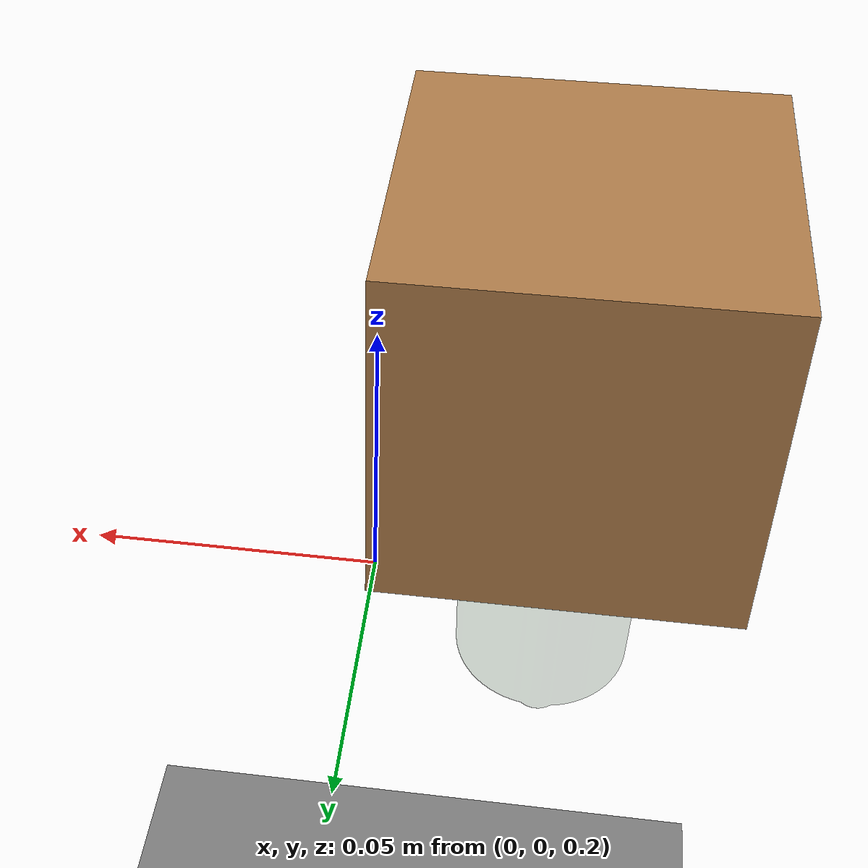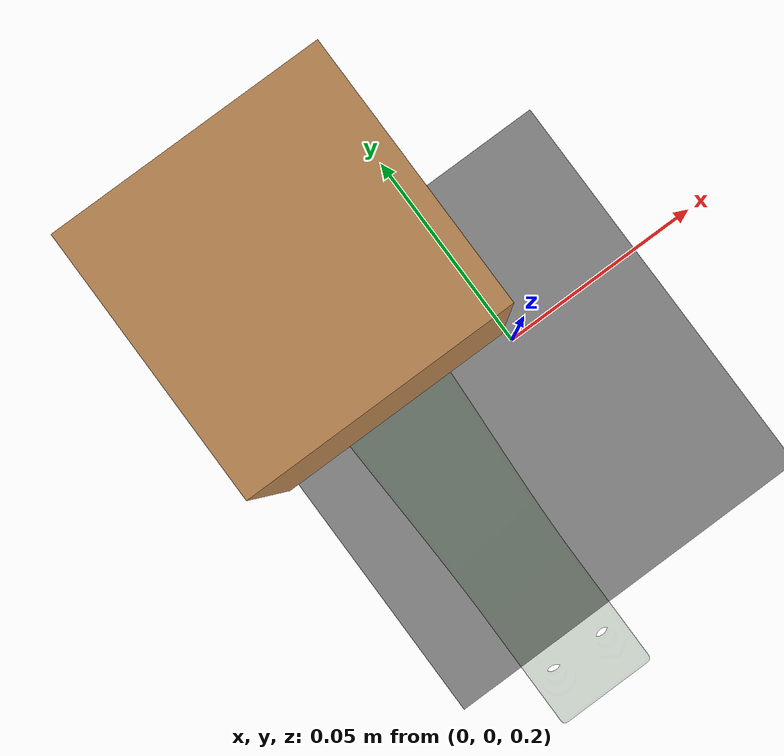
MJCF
<mujoco model="touchtest">
  <compiler autolimits="true" eulerseq="xyz" angle="radian" meshdir="assets"/>
  <include file="tacto_common.xml"/>

  <contact>
    <!-- enable all contacts between bodies childA and childB -->
    <!-- This is necessary since both can and left_finger belong to the same body.-->
    <!-- Though, in "normal" use cases, that won't be necessary. -->
    <pair geom1="finger_1_left_0" geom2="can_geom"/>
  </contact>

  <option tolerance="1e-8" gravity="0 0 -9.81" timestep="0.002"/>

  <visual>
    <headlight ambient=".7 .7 .7" diffuse=".2 .2 .2" specular="0.1 0.1 0.1" />
    <map znear="0.001" />
    <scale contactwidth=".02" contactheight=".5" />
    <global fovy="4"/>
  </visual>

  <statistic center="0 0 1" extent="1" meansize="0.1" />

  <worldbody>
    <light pos="1 0 .3" dir="-1 0 -.3" />
    <light pos="-1 0 .3" dir="1 0 -.3" />
    <geom name="floor" pos="0 0 0.01" type="plane" size="1 1 .01"/>

    <!-- We nest both the can and left_finger in the same master body to retain the same relative transforms. -->
    <body name="master" pos="0 -0.05 0.2" euler="0 0 0">
      <joint name="master_joint_x" type="hinge" axis="1 0 0" damping="0.1" />
      <joint name="master_joint_y" type="hinge" axis="0 1 0" damping="0.1" />
      <joint name="master_joint_z" type="hinge" axis="0 0 1" damping="0.1" />
      <!-- objects that we intend to touch with digit -->
      <body name="can" pos="-0.03 0.075 0.05" euler="0 0 0" gravcomp="1">
        <!-- For trying out with other meshes, edit the line below accordingly, and also their corresponding mesh file in tacto_common.xml -->
        <!-- For primitives, tacto_common.xml does not affect the loaded mesh. -->
        <!-- These lines are identical except for their respective pos and euler so that the objects are aligned properly. -->

        <!-- The Wood mesh is a 50 mm cube. Offset its center so its near face
             starts just above the sensor and reaches contact on frame 1. -->
        <geom name="can_geom" type="mesh" mesh="can_mesh" material="can_material" pos="0 0 0.02034" euler="0 0 0" friction="0.4" />

        <inertial pos="0 0 0" mass="1" diaginertia="1 1 1" />
        <joint name="zz" type="slide" axis="1 0 0" damping="0.1" range="-0.01 0.01"/>
        <joint name="yy" type="slide" axis="0 1 0" damping="0.1" range="-0.01 0.01"/>
        <joint name="xx" type="slide" axis="0 0 1" damping="0.1" range="-0.01 0.01"/>
      </body>

      <body name="left_finger_0" pos="-0.015 0.0095 0.055" euler="1.571 0 0" gravcomp="1">
          <geom mesh="finger_0" class="visual" rgba="0 0.2 0 0.2" />
          <geom mesh="finger_0" class="collision" name="finger_0_left_0" />
          <body name="left_finger_pad">
              <geom mesh="finger_1" class="visual" rgba="0 0 1 0.2" />
              <geom mesh="finger_1" class="collision" name="finger_1_left_0"/>
              <geom class="fingertip_pad_collision_1" name="fingertip_pad_collision_1_left_0_0" friction="2 0.05 0.0001"/>
              <geom class="fingertip_pad_collision_2" name="fingertip_pad_collision_1_left_1_0" friction="2 0.05 0.0001"/>
              <geom class="fingertip_pad_collision_3" name="fingertip_pad_collision_1_left_2_0" friction="2 0.05 0.0001"/>
              <geom class="fingertip_pad_collision_4" name="fingertip_pad_collision_1_left_3_0" friction="2 0.05 0.0001"/>
              <!-- The xy position of the site depends on the mesh that you are placing it under, but this works well for the example one. -->
              <!-- You want the site's orientation to follow the pyrender camera orientation, where -Z points towards the object. -->
              <!-- Calibrated pose for working with Taxim, specifically with digit_gripper fingerpad -->
              <site name="left_tacto_pad" pos="-0.014355 -0.0098 -0.063" euler="-1.57 0 1.57"/>
          </body>
          <inertial mass="0.015" pos="0 0 0" diaginertia="2.375e-6 2.375e-6 7.5e-7" />
      </body>
    </body>

  </worldbody>

</mujoco>

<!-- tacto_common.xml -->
<mujoco model="fr3">
    <compiler angle="radian" meshdir="assets" />

    <option integrator="implicitfast" impratio="20" noslip_iterations="5" cone="elliptic">
        <flag multiccd="enable" />
    </option>
    <custom>
		<numeric
			name="tcp_offset"
			data="0.0 0.0 0.0466"
	    />
    </custom>
    <default>
        <default class="fr3">
            <joint armature="0.1" damping="1" />
            <position inheritrange="1" />
            <default class="finger">
                <joint axis="0 -1 0" type="slide" range="0 0.04" />
            </default>
            <default class="visual">
                <geom type="mesh" group="2" contype="0" conaffinity="0" />
            </default>
            <default class="tacto_visual">
                <geom type="mesh" group="2" contype="0" conaffinity="0" friction="0.4"/>
            </default>
            <default class="tacto_collision">
                <geom type="mesh" group="3" mass="0" density="0" friction="10"/>
            </default>
            <default class="collision">
                <geom type="mesh" group="3" mass="0" density="0" />
                <default class="fingertip_pad_collision_1">
                    <geom type="box" size="0.0022 0.0005 0.0030875" pos="-0.009 -0.01 -0.06"/>
                </default>
                <default class="fingertip_pad_collision_2">
                    <geom type="box" size="0.0022 0.0005 0.0030875" pos="-0.019 -0.01 -0.06"/>
                </default>
                <default class="fingertip_pad_collision_3">
                    <geom type="box" size="0.0022 0.0005 0.0030875" pos="-0.019 -0.01 -0.068"/>
                </default>
                <default class="fingertip_pad_collision_4">
                    <geom type="box" size="0.0022 0.0005 0.0030875" pos="-0.009 -0.01 -0.068"/>
                </default>
            </default>
        </default>
    </default>

    <asset>
        <material name="black" rgba=".2 .2 .2 1" />
        <material name="white" rgba="1 1 1 1" />
        <material name="red" rgba="1 0.072272 0.039546 1" />
        <material name="gray" rgba="0.863156 0.863156 0.863157 1" />
        <material name="button_green" rgba="0.102241 0.571125 0.102242 1" />
        <material name="button_red" rgba="0.520996 0.008023 0.013702 1" />
        <material name="button_blue" rgba="0.024157 0.445201 0.737911 1" />

        <mesh file="assets/digit_gripper/digit_stub_full_0.obj" name="finger_0" />
        <mesh file="assets/digit_gripper/digit_stub_full_1.obj" name="finger_1" />

        <!-- Wood box from norm2tex/grasp_assets/box. -->
        <mesh name="can_mesh" file="assets/target_objs/box_Wood_woodtest_uv.obj" scale="1 1 1" />
        <texture name="can_texture" type="2d" file="assets/target_objs/box_Wood_woodtest_color.png"/>
        <material name="can_material" texture="can_texture" specular="0.5" shininess="0.5" rgba="1 1 1 1"/>

        <material name="blue_material" specular="0.0" shininess="0.0" rgba="0.0000 0.0000 1 1" />
        <material name="grey_material" specular="0.0" shininess="0.0" rgba="0.6471 0.6471 0.6471 1"/>
        <material name="grey_material_tp" specular="0.0" shininess="0.0" rgba="0.6471 0.6471 0.6471 0.5"/>
        <material name="green_material" specular="0.0" shininess="0.0" rgba="0.5137 0.7373 0.4078 1" />
        <material name="red_material" specular="0.0" shininess="0.0" rgba="1 0 0 1"/>
        </asset>
</mujoco>
